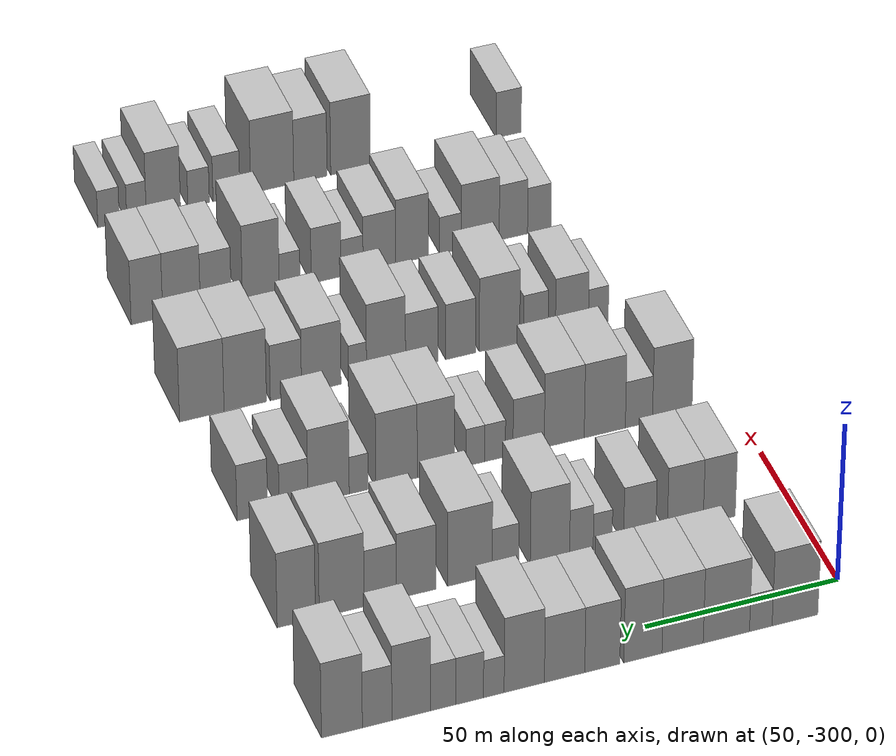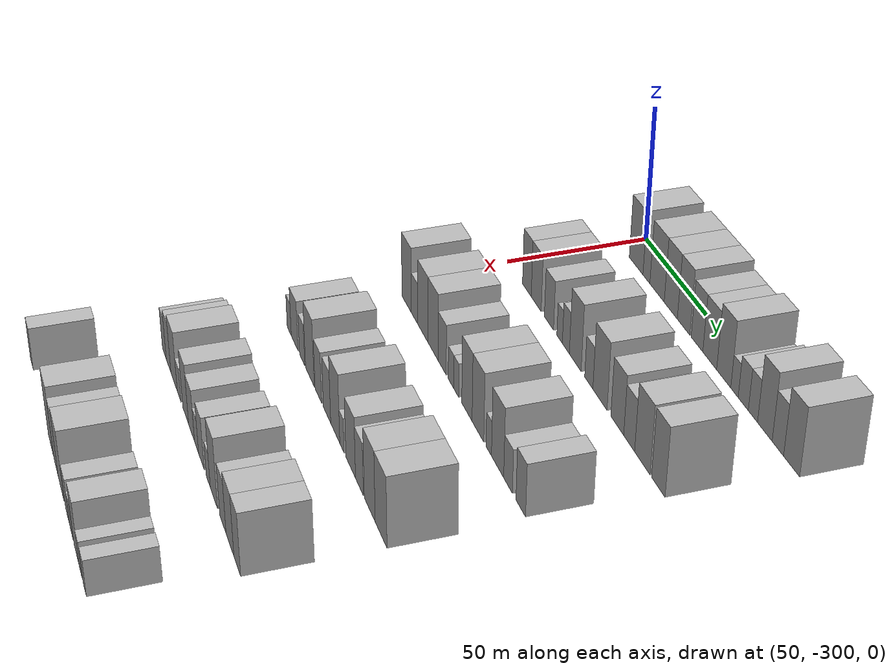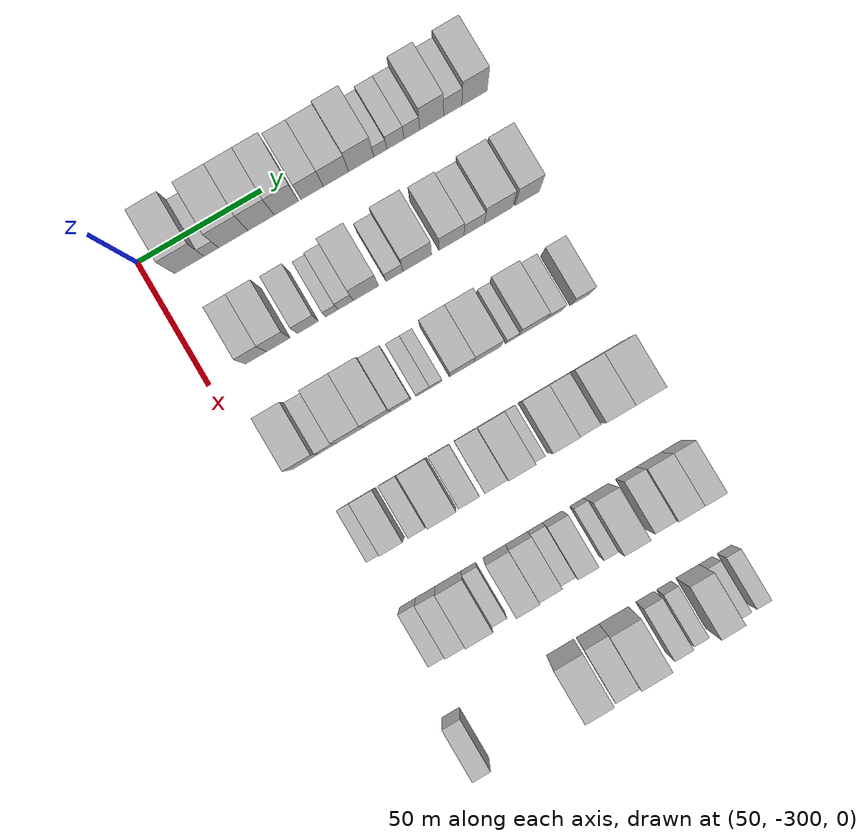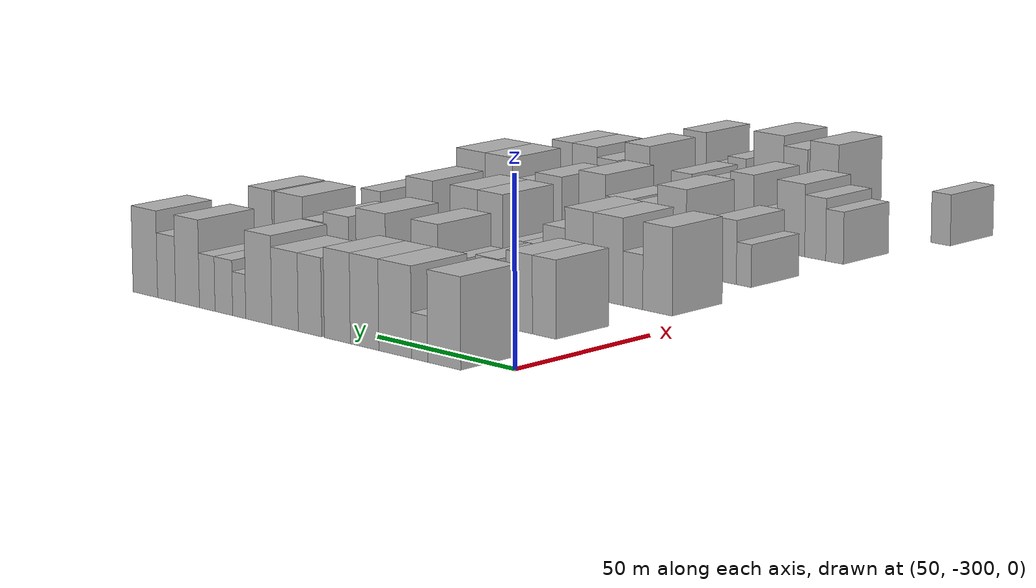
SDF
<sdf version="1.6">
 <world name="default">
  <model name="building_37">
   <static>1</static>
   <pose>50.0000 -284.7388 0 0.000000 0.000000 0.000000</pose>
   <link name="link">
    <pose>0 0 12.00 0 0 0</pose>
    <collision name="collision"><geometry><box><size>20.0000 11.8868 24.0000</size></box></geometry></collision>
    <visual name="visual">
     <cast_shadows>0</cast_shadows>
     <geometry><box><size>20.0000 11.8868 24.0000</size></box></geometry>
     <material>
      <script>
       <uri>model://HANNAS_wall/materials/scripts</uri>
       <uri>model://HANNAS_wall/materials/textures</uri>
       <name>vrc/HANNAS_wall</name>
      </script>
     </material>
    </visual>
   </link>
  </model>
  <model name="building_38">
   <static>1</static>
   <pose>50.0000 -275.8529 0 0.000000 0.000000 0.000000</pose>
   <link name="link">
    <pose>0 0 6.00 0 0 0</pose>
    <collision name="collision"><geometry><box><size>20.0000 5.8850 12.0000</size></box></geometry></collision>
    <visual name="visual">
     <cast_shadows>0</cast_shadows>
     <geometry><box><size>20.0000 5.8850 12.0000</size></box></geometry>
     <material>
      <script>
       <uri>model://HANNAS_wall/materials/scripts</uri>
       <uri>model://HANNAS_wall/materials/textures</uri>
       <name>vrc/HANNAS_wall</name>
      </script>
     </material>
    </visual>
   </link>
  </model>
  <model name="building_39">
   <static>1</static>
   <pose>50.0000 -266.9200 0 0.000000 0.000000 0.000000</pose>
   <link name="link">
    <pose>0 0 12.00 0 0 0</pose>
    <collision name="collision"><geometry><box><size>20.0000 11.9808 24.0000</size></box></geometry></collision>
    <visual name="visual">
     <cast_shadows>0</cast_shadows>
     <geometry><box><size>20.0000 11.9808 24.0000</size></box></geometry>
     <material>
      <script>
       <uri>model://HANNAS_wall/materials/scripts</uri>
       <uri>model://HANNAS_wall/materials/textures</uri>
       <name>vrc/HANNAS_wall</name>
      </script>
     </material>
    </visual>
   </link>
  </model>
  <model name="building_40">
   <static>1</static>
   <pose>50.0000 -255.6185 0 0.000000 0.000000 0.000000</pose>
   <link name="link">
    <pose>0 0 12.00 0 0 0</pose>
    <collision name="collision"><geometry><box><size>20.0000 10.6222 24.0000</size></box></geometry></collision>
    <visual name="visual">
     <cast_shadows>0</cast_shadows>
     <geometry><box><size>20.0000 10.6222 24.0000</size></box></geometry>
     <material>
      <script>
       <uri>model://HANNAS_wall/materials/scripts</uri>
       <uri>model://HANNAS_wall/materials/textures</uri>
       <name>vrc/HANNAS_wall</name>
      </script>
     </material>
    </visual>
   </link>
  </model>
  <model name="building_41">
   <static>1</static>
   <pose>50.0000 -245.3861 0 0.000000 0.000000 0.000000</pose>
   <link name="link">
    <pose>0 0 12.00 0 0 0</pose>
    <collision name="collision"><geometry><box><size>20.0000 9.8425 24.0000</size></box></geometry></collision>
    <visual name="visual">
     <cast_shadows>0</cast_shadows>
     <geometry><box><size>20.0000 9.8425 24.0000</size></box></geometry>
     <material>
      <script>
       <uri>model://HANNAS_wall/materials/scripts</uri>
       <uri>model://HANNAS_wall/materials/textures</uri>
       <name>vrc/HANNAS_wall</name>
      </script>
     </material>
    </visual>
   </link>
  </model>
  <model name="building_42">
   <static>1</static>
   <pose>50.0000 -234.9678 0 0.000000 0.000000 0.000000</pose>
   <link name="link">
    <pose>0 0 10.50 0 0 0</pose>
    <collision name="collision"><geometry><box><size>20.0000 8.9940 21.0000</size></box></geometry></collision>
    <visual name="visual">
     <cast_shadows>0</cast_shadows>
     <geometry><box><size>20.0000 8.9940 21.0000</size></box></geometry>
     <material>
      <script>
       <uri>model://HANNAS_wall/materials/scripts</uri>
       <uri>model://HANNAS_wall/materials/textures</uri>
       <name>vrc/HANNAS_wall</name>
      </script>
     </material>
    </visual>
   </link>
  </model>
  <model name="building_43">
   <static>1</static>
   <pose>50.0000 -225.3189 0 0.000000 0.000000 0.000000</pose>
   <link name="link">
    <pose>0 0 10.50 0 0 0</pose>
    <collision name="collision"><geometry><box><size>20.0000 10.3038 21.0000</size></box></geometry></collision>
    <visual name="visual">
     <cast_shadows>0</cast_shadows>
     <geometry><box><size>20.0000 10.3038 21.0000</size></box></geometry>
     <material>
      <script>
       <uri>model://HANNAS_wall/materials/scripts</uri>
       <uri>model://HANNAS_wall/materials/textures</uri>
       <name>vrc/HANNAS_wall</name>
      </script>
     </material>
    </visual>
   </link>
  </model>
  <model name="building_44">
   <static>1</static>
   <pose>50.0000 -215.0353 0 0.000000 0.000000 0.000000</pose>
   <link name="link">
    <pose>0 0 12.00 0 0 0</pose>
    <collision name="collision"><geometry><box><size>20.0000 10.2634 24.0000</size></box></geometry></collision>
    <visual name="visual">
     <cast_shadows>0</cast_shadows>
     <geometry><box><size>20.0000 10.2634 24.0000</size></box></geometry>
     <material>
      <script>
       <uri>model://HANNAS_wall/materials/scripts</uri>
       <uri>model://HANNAS_wall/materials/textures</uri>
       <name>vrc/HANNAS_wall</name>
      </script>
     </material>
    </visual>
   </link>
  </model>
  <model name="building_45">
   <static>1</static>
   <pose>50.0000 -207.2858 0 0.000000 0.000000 0.000000</pose>
   <link name="link">
    <pose>0 0 6.00 0 0 0</pose>
    <collision name="collision"><geometry><box><size>20.0000 5.2356 12.0000</size></box></geometry></collision>
    <visual name="visual">
     <cast_shadows>0</cast_shadows>
     <geometry><box><size>20.0000 5.2356 12.0000</size></box></geometry>
     <material>
      <script>
       <uri>model://HANNAS_wall/materials/scripts</uri>
       <uri>model://HANNAS_wall/materials/textures</uri>
       <name>vrc/HANNAS_wall</name>
      </script>
     </material>
    </visual>
   </link>
  </model>
  <model name="building_46">
   <static>1</static>
   <pose>50.0000 -201.1318 0 0.000000 0.000000 0.000000</pose>
   <link name="link">
    <pose>0 0 7.50 0 0 0</pose>
    <collision name="collision"><geometry><box><size>20.0000 7.0723 15.0000</size></box></geometry></collision>
    <visual name="visual">
     <cast_shadows>0</cast_shadows>
     <geometry><box><size>20.0000 7.0723 15.0000</size></box></geometry>
     <material>
      <script>
       <uri>model://HANNAS_wall/materials/scripts</uri>
       <uri>model://HANNAS_wall/materials/textures</uri>
       <name>vrc/HANNAS_wall</name>
      </script>
     </material>
    </visual>
   </link>
  </model>
  <model name="building_47">
   <static>1</static>
   <pose>50.0000 -194.4383 0 0.000000 0.000000 0.000000</pose>
   <link name="link">
    <pose>0 0 7.50 0 0 0</pose>
    <collision name="collision"><geometry><box><size>20.0000 6.3148 15.0000</size></box></geometry></collision>
    <visual name="visual">
     <cast_shadows>0</cast_shadows>
     <geometry><box><size>20.0000 6.3148 15.0000</size></box></geometry>
     <material>
      <script>
       <uri>model://HANNAS_wall/materials/scripts</uri>
       <uri>model://HANNAS_wall/materials/textures</uri>
       <name>vrc/HANNAS_wall</name>
      </script>
     </material>
    </visual>
   </link>
  </model>
  <model name="building_48">
   <static>1</static>
   <pose>50.0000 -186.3995 0 0.000000 0.000000 0.000000</pose>
   <link name="link">
    <pose>0 0 12.00 0 0 0</pose>
    <collision name="collision"><geometry><box><size>20.0000 9.7627 24.0000</size></box></geometry></collision>
    <visual name="visual">
     <cast_shadows>0</cast_shadows>
     <geometry><box><size>20.0000 9.7627 24.0000</size></box></geometry>
     <material>
      <script>
       <uri>model://HANNAS_wall/materials/scripts</uri>
       <uri>model://HANNAS_wall/materials/textures</uri>
       <name>vrc/HANNAS_wall</name>
      </script>
     </material>
    </visual>
   </link>
  </model>
  <model name="building_49">
   <static>1</static>
   <pose>50.0000 -177.7946 0 0.000000 0.000000 0.000000</pose>
   <link name="link">
    <pose>0 0 9.00 0 0 0</pose>
    <collision name="collision"><geometry><box><size>20.0000 7.4471 18.0000</size></box></geometry></collision>
    <visual name="visual">
     <cast_shadows>0</cast_shadows>
     <geometry><box><size>20.0000 7.4471 18.0000</size></box></geometry>
     <material>
      <script>
       <uri>model://HANNAS_wall/materials/scripts</uri>
       <uri>model://HANNAS_wall/materials/textures</uri>
       <name>vrc/HANNAS_wall</name>
      </script>
     </material>
    </visual>
   </link>
  </model>
  <model name="building_50">
   <static>1</static>
   <pose>50.0000 -168.9355 0 0.000000 0.000000 0.000000</pose>
   <link name="link">
    <pose>0 0 12.00 0 0 0</pose>
    <collision name="collision"><geometry><box><size>20.0000 10.2711 24.0000</size></box></geometry></collision>
    <visual name="visual">
     <cast_shadows>0</cast_shadows>
     <geometry><box><size>20.0000 10.2711 24.0000</size></box></geometry>
     <material>
      <script>
       <uri>model://HANNAS_wall/materials/scripts</uri>
       <uri>model://HANNAS_wall/materials/textures</uri>
       <name>vrc/HANNAS_wall</name>
      </script>
     </material>
    </visual>
   </link>
  </model>
  <model name="building_175">
   <static>1</static>
   <pose>90.0000 -280.9578 0 0.000000 0.000000 0.000000</pose>
   <link name="link">
    <pose>0 0 10.50 0 0 0</pose>
    <collision name="collision"><geometry><box><size>20.0000 8.4705 21.0000</size></box></geometry></collision>
    <visual name="visual">
     <cast_shadows>0</cast_shadows>
     <geometry><box><size>20.0000 8.4705 21.0000</size></box></geometry>
     <material>
      <script>
       <uri>model://HANNAS_wall/materials/scripts</uri>
       <uri>model://HANNAS_wall/materials/textures</uri>
       <name>vrc/HANNAS_wall</name>
      </script>
     </material>
    </visual>
   </link>
  </model>
  <model name="building_176">
   <static>1</static>
   <pose>90.0000 -271.9927 0 0.000000 0.000000 0.000000</pose>
   <link name="link">
    <pose>0 0 10.50 0 0 0</pose>
    <collision name="collision"><geometry><box><size>20.0000 9.4598 21.0000</size></box></geometry></collision>
    <visual name="visual">
     <cast_shadows>0</cast_shadows>
     <geometry><box><size>20.0000 9.4598 21.0000</size></box></geometry>
     <material>
      <script>
       <uri>model://HANNAS_wall/materials/scripts</uri>
       <uri>model://HANNAS_wall/materials/textures</uri>
       <name>vrc/HANNAS_wall</name>
      </script>
     </material>
    </visual>
   </link>
  </model>
  <model name="building_177">
   <static>1</static>
   <pose>90.0000 -260.0282 0 0.000000 0.000000 0.000000</pose>
   <link name="link">
    <pose>0 0 9.00 0 0 0</pose>
    <collision name="collision"><geometry><box><size>20.0000 8.4692 18.0000</size></box></geometry></collision>
    <visual name="visual">
     <cast_shadows>0</cast_shadows>
     <geometry><box><size>20.0000 8.4692 18.0000</size></box></geometry>
     <material>
      <script>
       <uri>model://HANNAS_wall/materials/scripts</uri>
       <uri>model://HANNAS_wall/materials/textures</uri>
       <name>vrc/HANNAS_wall</name>
      </script>
     </material>
    </visual>
   </link>
  </model>
  <model name="building_178">
   <static>1</static>
   <pose>90.0000 -250.3321 0 0.000000 0.000000 0.000000</pose>
   <link name="link">
    <pose>0 0 6.00 0 0 0</pose>
    <collision name="collision"><geometry><box><size>20.0000 4.9231 12.0000</size></box></geometry></collision>
    <visual name="visual">
     <cast_shadows>0</cast_shadows>
     <geometry><box><size>20.0000 4.9231 12.0000</size></box></geometry>
     <material>
      <script>
       <uri>model://HANNAS_wall/materials/scripts</uri>
       <uri>model://HANNAS_wall/materials/textures</uri>
       <name>vrc/HANNAS_wall</name>
      </script>
     </material>
    </visual>
   </link>
  </model>
  <model name="building_179">
   <static>1</static>
   <pose>90.0000 -244.7832 0 0.000000 0.000000 0.000000</pose>
   <link name="link">
    <pose>0 0 7.50 0 0 0</pose>
    <collision name="collision"><geometry><box><size>20.0000 6.1745 15.0000</size></box></geometry></collision>
    <visual name="visual">
     <cast_shadows>0</cast_shadows>
     <geometry><box><size>20.0000 6.1745 15.0000</size></box></geometry>
     <material>
      <script>
       <uri>model://HANNAS_wall/materials/scripts</uri>
       <uri>model://HANNAS_wall/materials/textures</uri>
       <name>vrc/HANNAS_wall</name>
      </script>
     </material>
    </visual>
   </link>
  </model>
  <model name="building_180">
   <static>1</static>
   <pose>90.0000 -236.5815 0 0.000000 0.000000 0.000000</pose>
   <link name="link">
    <pose>0 0 12.00 0 0 0</pose>
    <collision name="collision"><geometry><box><size>20.0000 10.2289 24.0000</size></box></geometry></collision>
    <visual name="visual">
     <cast_shadows>0</cast_shadows>
     <geometry><box><size>20.0000 10.2289 24.0000</size></box></geometry>
     <material>
      <script>
       <uri>model://HANNAS_wall/materials/scripts</uri>
       <uri>model://HANNAS_wall/materials/textures</uri>
       <name>vrc/HANNAS_wall</name>
      </script>
     </material>
    </visual>
   </link>
  </model>
  <model name="building_181">
   <static>1</static>
   <pose>90.0000 -225.0311 0 0.000000 0.000000 0.000000</pose>
   <link name="link">
    <pose>0 0 7.50 0 0 0</pose>
    <collision name="collision"><geometry><box><size>20.0000 6.8720 15.0000</size></box></geometry></collision>
    <visual name="visual">
     <cast_shadows>0</cast_shadows>
     <geometry><box><size>20.0000 6.8720 15.0000</size></box></geometry>
     <material>
      <script>
       <uri>model://HANNAS_wall/materials/scripts</uri>
       <uri>model://HANNAS_wall/materials/textures</uri>
       <name>vrc/HANNAS_wall</name>
      </script>
     </material>
    </visual>
   </link>
  </model>
  <model name="building_182">
   <static>1</static>
   <pose>90.0000 -215.8116 0 0.000000 0.000000 0.000000</pose>
   <link name="link">
    <pose>0 0 12.00 0 0 0</pose>
    <collision name="collision"><geometry><box><size>20.0000 11.5669 24.0000</size></box></geometry></collision>
    <visual name="visual">
     <cast_shadows>0</cast_shadows>
     <geometry><box><size>20.0000 11.5669 24.0000</size></box></geometry>
     <material>
      <script>
       <uri>model://HANNAS_wall/materials/scripts</uri>
       <uri>model://HANNAS_wall/materials/textures</uri>
       <name>vrc/HANNAS_wall</name>
      </script>
     </material>
    </visual>
   </link>
  </model>
  <model name="building_183">
   <static>1</static>
   <pose>90.0000 -201.9720 0 0.000000 0.000000 0.000000</pose>
   <link name="link">
    <pose>0 0 10.50 0 0 0</pose>
    <collision name="collision"><geometry><box><size>20.0000 10.1124 21.0000</size></box></geometry></collision>
    <visual name="visual">
     <cast_shadows>0</cast_shadows>
     <geometry><box><size>20.0000 10.1124 21.0000</size></box></geometry>
     <material>
      <script>
       <uri>model://HANNAS_wall/materials/scripts</uri>
       <uri>model://HANNAS_wall/materials/textures</uri>
       <name>vrc/HANNAS_wall</name>
      </script>
     </material>
    </visual>
   </link>
  </model>
  <model name="building_184">
   <static>1</static>
   <pose>90.0000 -192.7552 0 0.000000 0.000000 0.000000</pose>
   <link name="link">
    <pose>0 0 9.00 0 0 0</pose>
    <collision name="collision"><geometry><box><size>20.0000 8.3213 18.0000</size></box></geometry></collision>
    <visual name="visual">
     <cast_shadows>0</cast_shadows>
     <geometry><box><size>20.0000 8.3213 18.0000</size></box></geometry>
     <material>
      <script>
       <uri>model://HANNAS_wall/materials/scripts</uri>
       <uri>model://HANNAS_wall/materials/textures</uri>
       <name>vrc/HANNAS_wall</name>
      </script>
     </material>
    </visual>
   </link>
  </model>
  <model name="building_185">
   <static>1</static>
   <pose>90.0000 -182.8525 0 0.000000 0.000000 0.000000</pose>
   <link name="link">
    <pose>0 0 12.00 0 0 0</pose>
    <collision name="collision"><geometry><box><size>20.0000 11.4841 24.0000</size></box></geometry></collision>
    <visual name="visual">
     <cast_shadows>0</cast_shadows>
     <geometry><box><size>20.0000 11.4841 24.0000</size></box></geometry>
     <material>
      <script>
       <uri>model://HANNAS_wall/materials/scripts</uri>
       <uri>model://HANNAS_wall/materials/textures</uri>
       <name>vrc/HANNAS_wall</name>
      </script>
     </material>
    </visual>
   </link>
  </model>
  <model name="building_186">
   <static>1</static>
   <pose>90.0000 -171.2404 0 0.000000 0.000000 0.000000</pose>
   <link name="link">
    <pose>0 0 12.00 0 0 0</pose>
    <collision name="collision"><geometry><box><size>20.0000 9.7399 24.0000</size></box></geometry></collision>
    <visual name="visual">
     <cast_shadows>0</cast_shadows>
     <geometry><box><size>20.0000 9.7399 24.0000</size></box></geometry>
     <material>
      <script>
       <uri>model://HANNAS_wall/materials/scripts</uri>
       <uri>model://HANNAS_wall/materials/textures</uri>
       <name>vrc/HANNAS_wall</name>
      </script>
     </material>
    </visual>
   </link>
  </model>
  <model name="building_313">
   <static>1</static>
   <pose>130.0000 -284.2137 0 0.000000 0.000000 0.000000</pose>
   <link name="link">
    <pose>0 0 12.00 0 0 0</pose>
    <collision name="collision"><geometry><box><size>20.0000 10.6207 24.0000</size></box></geometry></collision>
    <visual name="visual">
     <cast_shadows>0</cast_shadows>
     <geometry><box><size>20.0000 10.6207 24.0000</size></box></geometry>
     <material>
      <script>
       <uri>model://HANNAS_wall/materials/scripts</uri>
       <uri>model://HANNAS_wall/materials/textures</uri>
       <name>vrc/HANNAS_wall</name>
      </script>
     </material>
    </visual>
   </link>
  </model>
  <model name="building_314">
   <static>1</static>
   <pose>130.0000 -275.2916 0 0.000000 0.000000 0.000000</pose>
   <link name="link">
    <pose>0 0 7.50 0 0 0</pose>
    <collision name="collision"><geometry><box><size>20.0000 7.2234 15.0000</size></box></geometry></collision>
    <visual name="visual">
     <cast_shadows>0</cast_shadows>
     <geometry><box><size>20.0000 7.2234 15.0000</size></box></geometry>
     <material>
      <script>
       <uri>model://HANNAS_wall/materials/scripts</uri>
       <uri>model://HANNAS_wall/materials/textures</uri>
       <name>vrc/HANNAS_wall</name>
      </script>
     </material>
    </visual>
   </link>
  </model>
  <model name="building_315">
   <static>1</static>
   <pose>130.0000 -266.1962 0 0.000000 0.000000 0.000000</pose>
   <link name="link">
    <pose>0 0 12.00 0 0 0</pose>
    <collision name="collision"><geometry><box><size>20.0000 10.9675 24.0000</size></box></geometry></collision>
    <visual name="visual">
     <cast_shadows>0</cast_shadows>
     <geometry><box><size>20.0000 10.9675 24.0000</size></box></geometry>
     <material>
      <script>
       <uri>model://HANNAS_wall/materials/scripts</uri>
       <uri>model://HANNAS_wall/materials/textures</uri>
       <name>vrc/HANNAS_wall</name>
      </script>
     </material>
    </visual>
   </link>
  </model>
  <model name="building_316">
   <static>1</static>
   <pose>130.0000 -255.4026 0 0.000000 0.000000 0.000000</pose>
   <link name="link">
    <pose>0 0 12.00 0 0 0</pose>
    <collision name="collision"><geometry><box><size>20.0000 10.6198 24.0000</size></box></geometry></collision>
    <visual name="visual">
     <cast_shadows>0</cast_shadows>
     <geometry><box><size>20.0000 10.6198 24.0000</size></box></geometry>
     <material>
      <script>
       <uri>model://HANNAS_wall/materials/scripts</uri>
       <uri>model://HANNAS_wall/materials/textures</uri>
       <name>vrc/HANNAS_wall</name>
      </script>
     </material>
    </visual>
   </link>
  </model>
  <model name="building_317">
   <static>1</static>
   <pose>130.0000 -245.9432 0 0.000000 0.000000 0.000000</pose>
   <link name="link">
    <pose>0 0 9.00 0 0 0</pose>
    <collision name="collision"><geometry><box><size>20.0000 8.2990 18.0000</size></box></geometry></collision>
    <visual name="visual">
     <cast_shadows>0</cast_shadows>
     <geometry><box><size>20.0000 8.2990 18.0000</size></box></geometry>
     <material>
      <script>
       <uri>model://HANNAS_wall/materials/scripts</uri>
       <uri>model://HANNAS_wall/materials/textures</uri>
       <name>vrc/HANNAS_wall</name>
      </script>
     </material>
    </visual>
   </link>
  </model>
  <model name="building_318">
   <static>1</static>
   <pose>130.0000 -237.0537 0 0.000000 0.000000 0.000000</pose>
   <link name="link">
    <pose>0 0 6.00 0 0 0</pose>
    <collision name="collision"><geometry><box><size>20.0000 5.4799 12.0000</size></box></geometry></collision>
    <visual name="visual">
     <cast_shadows>0</cast_shadows>
     <geometry><box><size>20.0000 5.4799 12.0000</size></box></geometry>
     <material>
      <script>
       <uri>model://HANNAS_wall/materials/scripts</uri>
       <uri>model://HANNAS_wall/materials/textures</uri>
       <name>vrc/HANNAS_wall</name>
      </script>
     </material>
    </visual>
   </link>
  </model>
  <model name="building_319">
   <static>1</static>
   <pose>130.0000 -231.8690 0 0.000000 0.000000 0.000000</pose>
   <link name="link">
    <pose>0 0 6.00 0 0 0</pose>
    <collision name="collision"><geometry><box><size>20.0000 4.8894 12.0000</size></box></geometry></collision>
    <visual name="visual">
     <cast_shadows>0</cast_shadows>
     <geometry><box><size>20.0000 4.8894 12.0000</size></box></geometry>
     <material>
      <script>
       <uri>model://HANNAS_wall/materials/scripts</uri>
       <uri>model://HANNAS_wall/materials/textures</uri>
       <name>vrc/HANNAS_wall</name>
      </script>
     </material>
    </visual>
   </link>
  </model>
  <model name="building_320">
   <static>1</static>
   <pose>130.0000 -221.4959 0 0.000000 0.000000 0.000000</pose>
   <link name="link">
    <pose>0 0 12.00 0 0 0</pose>
    <collision name="collision"><geometry><box><size>20.0000 9.8567 24.0000</size></box></geometry></collision>
    <visual name="visual">
     <cast_shadows>0</cast_shadows>
     <geometry><box><size>20.0000 9.8567 24.0000</size></box></geometry>
     <material>
      <script>
       <uri>model://HANNAS_wall/materials/scripts</uri>
       <uri>model://HANNAS_wall/materials/textures</uri>
       <name>vrc/HANNAS_wall</name>
      </script>
     </material>
    </visual>
   </link>
  </model>
  <model name="building_321">
   <static>1</static>
   <pose>130.0000 -211.1386 0 0.000000 0.000000 0.000000</pose>
   <link name="link">
    <pose>0 0 12.00 0 0 0</pose>
    <collision name="collision"><geometry><box><size>20.0000 10.8580 24.0000</size></box></geometry></collision>
    <visual name="visual">
     <cast_shadows>0</cast_shadows>
     <geometry><box><size>20.0000 10.8580 24.0000</size></box></geometry>
     <material>
      <script>
       <uri>model://HANNAS_wall/materials/scripts</uri>
       <uri>model://HANNAS_wall/materials/textures</uri>
       <name>vrc/HANNAS_wall</name>
      </script>
     </material>
    </visual>
   </link>
  </model>
  <model name="building_322">
   <static>1</static>
   <pose>130.0000 -201.2331 0 0.000000 0.000000 0.000000</pose>
   <link name="link">
    <pose>0 0 6.00 0 0 0</pose>
    <collision name="collision"><geometry><box><size>20.0000 4.9531 12.0000</size></box></geometry></collision>
    <visual name="visual">
     <cast_shadows>0</cast_shadows>
     <geometry><box><size>20.0000 4.9531 12.0000</size></box></geometry>
     <material>
      <script>
       <uri>model://HANNAS_wall/materials/scripts</uri>
       <uri>model://HANNAS_wall/materials/textures</uri>
       <name>vrc/HANNAS_wall</name>
      </script>
     </material>
    </visual>
   </link>
  </model>
  <model name="building_323">
   <static>1</static>
   <pose>130.0000 -193.3806 0 0.000000 0.000000 0.000000</pose>
   <link name="link">
    <pose>0 0 12.00 0 0 0</pose>
    <collision name="collision"><geometry><box><size>20.0000 10.7519 24.0000</size></box></geometry></collision>
    <visual name="visual">
     <cast_shadows>0</cast_shadows>
     <geometry><box><size>20.0000 10.7519 24.0000</size></box></geometry>
     <material>
      <script>
       <uri>model://HANNAS_wall/materials/scripts</uri>
       <uri>model://HANNAS_wall/materials/textures</uri>
       <name>vrc/HANNAS_wall</name>
      </script>
     </material>
    </visual>
   </link>
  </model>
  <model name="building_324">
   <static>1</static>
   <pose>130.0000 -184.2711 0 0.000000 0.000000 0.000000</pose>
   <link name="link">
    <pose>0 0 7.50 0 0 0</pose>
    <collision name="collision"><geometry><box><size>20.0000 7.4671 15.0000</size></box></geometry></collision>
    <visual name="visual">
     <cast_shadows>0</cast_shadows>
     <geometry><box><size>20.0000 7.4671 15.0000</size></box></geometry>
     <material>
      <script>
       <uri>model://HANNAS_wall/materials/scripts</uri>
       <uri>model://HANNAS_wall/materials/textures</uri>
       <name>vrc/HANNAS_wall</name>
      </script>
     </material>
    </visual>
   </link>
  </model>
  <model name="building_325">
   <static>1</static>
   <pose>130.0000 -173.5588 0 0.000000 0.000000 0.000000</pose>
   <link name="link">
    <pose>0 0 9.00 0 0 0</pose>
    <collision name="collision"><geometry><box><size>20.0000 7.9576 18.0000</size></box></geometry></collision>
    <visual name="visual">
     <cast_shadows>0</cast_shadows>
     <geometry><box><size>20.0000 7.9576 18.0000</size></box></geometry>
     <material>
      <script>
       <uri>model://HANNAS_wall/materials/scripts</uri>
       <uri>model://HANNAS_wall/materials/textures</uri>
       <name>vrc/HANNAS_wall</name>
      </script>
     </material>
    </visual>
   </link>
  </model>
  <model name="building_450">
   <static>1</static>
   <pose>170.0000 -279.7209 0 0.000000 0.000000 0.000000</pose>
   <link name="link">
    <pose>0 0 6.00 0 0 0</pose>
    <collision name="collision"><geometry><box><size>20.0000 5.4074 12.0000</size></box></geometry></collision>
    <visual name="visual">
     <cast_shadows>0</cast_shadows>
     <geometry><box><size>20.0000 5.4074 12.0000</size></box></geometry>
     <material>
      <script>
       <uri>model://HANNAS_wall/materials/scripts</uri>
       <uri>model://HANNAS_wall/materials/textures</uri>
       <name>vrc/HANNAS_wall</name>
      </script>
     </material>
    </visual>
   </link>
  </model>
  <model name="building_451">
   <static>1</static>
   <pose>170.0000 -272.5536 0 0.000000 0.000000 0.000000</pose>
   <link name="link">
    <pose>0 0 9.00 0 0 0</pose>
    <collision name="collision"><geometry><box><size>20.0000 8.9273 18.0000</size></box></geometry></collision>
    <visual name="visual">
     <cast_shadows>0</cast_shadows>
     <geometry><box><size>20.0000 8.9273 18.0000</size></box></geometry>
     <material>
      <script>
       <uri>model://HANNAS_wall/materials/scripts</uri>
       <uri>model://HANNAS_wall/materials/textures</uri>
       <name>vrc/HANNAS_wall</name>
      </script>
     </material>
    </visual>
   </link>
  </model>
  <model name="building_452">
   <static>1</static>
   <pose>170.0000 -262.7627 0 0.000000 0.000000 0.000000</pose>
   <link name="link">
    <pose>0 0 7.50 0 0 0</pose>
    <collision name="collision"><geometry><box><size>20.0000 6.6545 15.0000</size></box></geometry></collision>
    <visual name="visual">
     <cast_shadows>0</cast_shadows>
     <geometry><box><size>20.0000 6.6545 15.0000</size></box></geometry>
     <material>
      <script>
       <uri>model://HANNAS_wall/materials/scripts</uri>
       <uri>model://HANNAS_wall/materials/textures</uri>
       <name>vrc/HANNAS_wall</name>
      </script>
     </material>
    </visual>
   </link>
  </model>
  <model name="building_453">
   <static>1</static>
   <pose>170.0000 -252.9915 0 0.000000 0.000000 0.000000</pose>
   <link name="link">
    <pose>0 0 12.00 0 0 0</pose>
    <collision name="collision"><geometry><box><size>20.0000 10.8878 24.0000</size></box></geometry></collision>
    <visual name="visual">
     <cast_shadows>0</cast_shadows>
     <geometry><box><size>20.0000 10.8878 24.0000</size></box></geometry>
     <material>
      <script>
       <uri>model://HANNAS_wall/materials/scripts</uri>
       <uri>model://HANNAS_wall/materials/textures</uri>
       <name>vrc/HANNAS_wall</name>
      </script>
     </material>
    </visual>
   </link>
  </model>
  <model name="building_454">
   <static>1</static>
   <pose>170.0000 -242.5281 0 0.000000 0.000000 0.000000</pose>
   <link name="link">
    <pose>0 0 9.00 0 0 0</pose>
    <collision name="collision"><geometry><box><size>20.0000 8.0390 18.0000</size></box></geometry></collision>
    <visual name="visual">
     <cast_shadows>0</cast_shadows>
     <geometry><box><size>20.0000 8.0390 18.0000</size></box></geometry>
     <material>
      <script>
       <uri>model://HANNAS_wall/materials/scripts</uri>
       <uri>model://HANNAS_wall/materials/textures</uri>
       <name>vrc/HANNAS_wall</name>
      </script>
     </material>
    </visual>
   </link>
  </model>
  <model name="building_455">
   <static>1</static>
   <pose>170.0000 -232.1418 0 0.000000 0.000000 0.000000</pose>
   <link name="link">
    <pose>0 0 9.00 0 0 0</pose>
    <collision name="collision"><geometry><box><size>20.0000 8.7337 18.0000</size></box></geometry></collision>
    <visual name="visual">
     <cast_shadows>0</cast_shadows>
     <geometry><box><size>20.0000 8.7337 18.0000</size></box></geometry>
     <material>
      <script>
       <uri>model://HANNAS_wall/materials/scripts</uri>
       <uri>model://HANNAS_wall/materials/textures</uri>
       <name>vrc/HANNAS_wall</name>
      </script>
     </material>
    </visual>
   </link>
  </model>
  <model name="building_456">
   <static>1</static>
   <pose>170.0000 -222.5705 0 0.000000 0.000000 0.000000</pose>
   <link name="link">
    <pose>0 0 12.00 0 0 0</pose>
    <collision name="collision"><geometry><box><size>20.0000 10.4088 24.0000</size></box></geometry></collision>
    <visual name="visual">
     <cast_shadows>0</cast_shadows>
     <geometry><box><size>20.0000 10.4088 24.0000</size></box></geometry>
     <material>
      <script>
       <uri>model://HANNAS_wall/materials/scripts</uri>
       <uri>model://HANNAS_wall/materials/textures</uri>
       <name>vrc/HANNAS_wall</name>
      </script>
     </material>
    </visual>
   </link>
  </model>
  <model name="building_457">
   <static>1</static>
   <pose>170.0000 -214.9620 0 0.000000 0.000000 0.000000</pose>
   <link name="link">
    <pose>0 0 6.00 0 0 0</pose>
    <collision name="collision"><geometry><box><size>20.0000 4.8082 12.0000</size></box></geometry></collision>
    <visual name="visual">
     <cast_shadows>0</cast_shadows>
     <geometry><box><size>20.0000 4.8082 12.0000</size></box></geometry>
     <material>
      <script>
       <uri>model://HANNAS_wall/materials/scripts</uri>
       <uri>model://HANNAS_wall/materials/textures</uri>
       <name>vrc/HANNAS_wall</name>
      </script>
     </material>
    </visual>
   </link>
  </model>
  <model name="building_458">
   <static>1</static>
   <pose>170.0000 -205.3204 0 0.000000 0.000000 0.000000</pose>
   <link name="link">
    <pose>0 0 10.50 0 0 0</pose>
    <collision name="collision"><geometry><box><size>20.0000 10.4750 21.0000</size></box></geometry></collision>
    <visual name="visual">
     <cast_shadows>0</cast_shadows>
     <geometry><box><size>20.0000 10.4750 21.0000</size></box></geometry>
     <material>
      <script>
       <uri>model://HANNAS_wall/materials/scripts</uri>
       <uri>model://HANNAS_wall/materials/textures</uri>
       <name>vrc/HANNAS_wall</name>
      </script>
     </material>
    </visual>
   </link>
  </model>
  <model name="building_459">
   <static>1</static>
   <pose>170.0000 -195.9424 0 0.000000 0.000000 0.000000</pose>
   <link name="link">
    <pose>0 0 9.00 0 0 0</pose>
    <collision name="collision"><geometry><box><size>20.0000 8.2811 18.0000</size></box></geometry></collision>
    <visual name="visual">
     <cast_shadows>0</cast_shadows>
     <geometry><box><size>20.0000 8.2811 18.0000</size></box></geometry>
     <material>
      <script>
       <uri>model://HANNAS_wall/materials/scripts</uri>
       <uri>model://HANNAS_wall/materials/textures</uri>
       <name>vrc/HANNAS_wall</name>
      </script>
     </material>
    </visual>
   </link>
  </model>
  <model name="building_460">
   <static>1</static>
   <pose>170.0000 -185.2020 0 0.000000 0.000000 0.000000</pose>
   <link name="link">
    <pose>0 0 12.00 0 0 0</pose>
    <collision name="collision"><geometry><box><size>20.0000 11.1996 24.0000</size></box></geometry></collision>
    <visual name="visual">
     <cast_shadows>0</cast_shadows>
     <geometry><box><size>20.0000 11.1996 24.0000</size></box></geometry>
     <material>
      <script>
       <uri>model://HANNAS_wall/materials/scripts</uri>
       <uri>model://HANNAS_wall/materials/textures</uri>
       <name>vrc/HANNAS_wall</name>
      </script>
     </material>
    </visual>
   </link>
  </model>
  <model name="building_461">
   <static>1</static>
   <pose>170.0000 -173.7382 0 0.000000 0.000000 0.000000</pose>
   <link name="link">
    <pose>0 0 12.00 0 0 0</pose>
    <collision name="collision"><geometry><box><size>20.0000 11.7281 24.0000</size></box></geometry></collision>
    <visual name="visual">
     <cast_shadows>0</cast_shadows>
     <geometry><box><size>20.0000 11.7281 24.0000</size></box></geometry>
     <material>
      <script>
       <uri>model://HANNAS_wall/materials/scripts</uri>
       <uri>model://HANNAS_wall/materials/textures</uri>
       <name>vrc/HANNAS_wall</name>
      </script>
     </material>
    </visual>
   </link>
  </model>
  <model name="building_581">
   <static>1</static>
   <pose>210.0000 -278.6786 0 0.000000 0.000000 0.000000</pose>
   <link name="link">
    <pose>0 0 7.50 0 0 0</pose>
    <collision name="collision"><geometry><box><size>20.0000 6.4524 15.0000</size></box></geometry></collision>
    <visual name="visual">
     <cast_shadows>0</cast_shadows>
     <geometry><box><size>20.0000 6.4524 15.0000</size></box></geometry>
     <material>
      <script>
       <uri>model://HANNAS_wall/materials/scripts</uri>
       <uri>model://HANNAS_wall/materials/textures</uri>
       <name>vrc/HANNAS_wall</name>
      </script>
     </material>
    </visual>
   </link>
  </model>
  <model name="building_582">
   <static>1</static>
   <pose>210.0000 -271.5633 0 0.000000 0.000000 0.000000</pose>
   <link name="link">
    <pose>0 0 9.00 0 0 0</pose>
    <collision name="collision"><geometry><box><size>20.0000 7.7782 18.0000</size></box></geometry></collision>
    <visual name="visual">
     <cast_shadows>0</cast_shadows>
     <geometry><box><size>20.0000 7.7782 18.0000</size></box></geometry>
     <material>
      <script>
       <uri>model://HANNAS_wall/materials/scripts</uri>
       <uri>model://HANNAS_wall/materials/textures</uri>
       <name>vrc/HANNAS_wall</name>
      </script>
     </material>
    </visual>
   </link>
  </model>
  <model name="building_583">
   <static>1</static>
   <pose>210.0000 -262.4626 0 0.000000 0.000000 0.000000</pose>
   <link name="link">
    <pose>0 0 10.50 0 0 0</pose>
    <collision name="collision"><geometry><box><size>20.0000 10.4232 21.0000</size></box></geometry></collision>
    <visual name="visual">
     <cast_shadows>0</cast_shadows>
     <geometry><box><size>20.0000 10.4232 21.0000</size></box></geometry>
     <material>
      <script>
       <uri>model://HANNAS_wall/materials/scripts</uri>
       <uri>model://HANNAS_wall/materials/textures</uri>
       <name>vrc/HANNAS_wall</name>
      </script>
     </material>
    </visual>
   </link>
  </model>
  <model name="building_584">
   <static>1</static>
   <pose>210.0000 -254.3051 0 0.000000 0.000000 0.000000</pose>
   <link name="link">
    <pose>0 0 6.00 0 0 0</pose>
    <collision name="collision"><geometry><box><size>20.0000 5.8917 12.0000</size></box></geometry></collision>
    <visual name="visual">
     <cast_shadows>0</cast_shadows>
     <geometry><box><size>20.0000 5.8917 12.0000</size></box></geometry>
     <material>
      <script>
       <uri>model://HANNAS_wall/materials/scripts</uri>
       <uri>model://HANNAS_wall/materials/textures</uri>
       <name>vrc/HANNAS_wall</name>
      </script>
     </material>
    </visual>
   </link>
  </model>
  <model name="building_585">
   <static>1</static>
   <pose>210.0000 -243.8715 0 0.000000 0.000000 0.000000</pose>
   <link name="link">
    <pose>0 0 10.50 0 0 0</pose>
    <collision name="collision"><geometry><box><size>20.0000 8.9755 21.0000</size></box></geometry></collision>
    <visual name="visual">
     <cast_shadows>0</cast_shadows>
     <geometry><box><size>20.0000 8.9755 21.0000</size></box></geometry>
     <material>
      <script>
       <uri>model://HANNAS_wall/materials/scripts</uri>
       <uri>model://HANNAS_wall/materials/textures</uri>
       <name>vrc/HANNAS_wall</name>
      </script>
     </material>
    </visual>
   </link>
  </model>
  <model name="building_586">
   <static>1</static>
   <pose>210.0000 -234.9448 0 0.000000 0.000000 0.000000</pose>
   <link name="link">
    <pose>0 0 9.00 0 0 0</pose>
    <collision name="collision"><geometry><box><size>20.0000 8.8780 18.0000</size></box></geometry></collision>
    <visual name="visual">
     <cast_shadows>0</cast_shadows>
     <geometry><box><size>20.0000 8.8780 18.0000</size></box></geometry>
     <material>
      <script>
       <uri>model://HANNAS_wall/materials/scripts</uri>
       <uri>model://HANNAS_wall/materials/textures</uri>
       <name>vrc/HANNAS_wall</name>
      </script>
     </material>
    </visual>
   </link>
  </model>
  <model name="building_587">
   <static>1</static>
   <pose>210.0000 -227.5093 0 0.000000 0.000000 0.000000</pose>
   <link name="link">
    <pose>0 0 6.00 0 0 0</pose>
    <collision name="collision"><geometry><box><size>20.0000 5.9931 12.0000</size></box></geometry></collision>
    <visual name="visual">
     <cast_shadows>0</cast_shadows>
     <geometry><box><size>20.0000 5.9931 12.0000</size></box></geometry>
     <material>
      <script>
       <uri>model://HANNAS_wall/materials/scripts</uri>
       <uri>model://HANNAS_wall/materials/textures</uri>
       <name>vrc/HANNAS_wall</name>
      </script>
     </material>
    </visual>
   </link>
  </model>
  <model name="building_588">
   <static>1</static>
   <pose>210.0000 -220.4834 0 0.000000 0.000000 0.000000</pose>
   <link name="link">
    <pose>0 0 9.00 0 0 0</pose>
    <collision name="collision"><geometry><box><size>20.0000 8.0586 18.0000</size></box></geometry></collision>
    <visual name="visual">
     <cast_shadows>0</cast_shadows>
     <geometry><box><size>20.0000 8.0586 18.0000</size></box></geometry>
     <material>
      <script>
       <uri>model://HANNAS_wall/materials/scripts</uri>
       <uri>model://HANNAS_wall/materials/textures</uri>
       <name>vrc/HANNAS_wall</name>
      </script>
     </material>
    </visual>
   </link>
  </model>
  <model name="building_589">
   <static>1</static>
   <pose>210.0000 -210.6395 0 0.000000 0.000000 0.000000</pose>
   <link name="link">
    <pose>0 0 6.00 0 0 0</pose>
    <collision name="collision"><geometry><box><size>20.0000 5.6292 12.0000</size></box></geometry></collision>
    <visual name="visual">
     <cast_shadows>0</cast_shadows>
     <geometry><box><size>20.0000 5.6292 12.0000</size></box></geometry>
     <material>
      <script>
       <uri>model://HANNAS_wall/materials/scripts</uri>
       <uri>model://HANNAS_wall/materials/textures</uri>
       <name>vrc/HANNAS_wall</name>
      </script>
     </material>
    </visual>
   </link>
  </model>
  <model name="building_590">
   <static>1</static>
   <pose>210.0000 -202.8587 0 0.000000 0.000000 0.000000</pose>
   <link name="link">
    <pose>0 0 12.00 0 0 0</pose>
    <collision name="collision"><geometry><box><size>20.0000 9.9324 24.0000</size></box></geometry></collision>
    <visual name="visual">
     <cast_shadows>0</cast_shadows>
     <geometry><box><size>20.0000 9.9324 24.0000</size></box></geometry>
     <material>
      <script>
       <uri>model://HANNAS_wall/materials/scripts</uri>
       <uri>model://HANNAS_wall/materials/textures</uri>
       <name>vrc/HANNAS_wall</name>
      </script>
     </material>
    </visual>
   </link>
  </model>
  <model name="building_591">
   <static>1</static>
   <pose>210.0000 -190.7463 0 0.000000 0.000000 0.000000</pose>
   <link name="link">
    <pose>0 0 9.00 0 0 0</pose>
    <collision name="collision"><geometry><box><size>20.0000 8.2924 18.0000</size></box></geometry></collision>
    <visual name="visual">
     <cast_shadows>0</cast_shadows>
     <geometry><box><size>20.0000 8.2924 18.0000</size></box></geometry>
     <material>
      <script>
       <uri>model://HANNAS_wall/materials/scripts</uri>
       <uri>model://HANNAS_wall/materials/textures</uri>
       <name>vrc/HANNAS_wall</name>
      </script>
     </material>
    </visual>
   </link>
  </model>
  <model name="building_592">
   <static>1</static>
   <pose>210.0000 -181.5634 0 0.000000 0.000000 0.000000</pose>
   <link name="link">
    <pose>0 0 10.50 0 0 0</pose>
    <collision name="collision"><geometry><box><size>20.0000 10.0734 21.0000</size></box></geometry></collision>
    <visual name="visual">
     <cast_shadows>0</cast_shadows>
     <geometry><box><size>20.0000 10.0734 21.0000</size></box></geometry>
     <material>
      <script>
       <uri>model://HANNAS_wall/materials/scripts</uri>
       <uri>model://HANNAS_wall/materials/textures</uri>
       <name>vrc/HANNAS_wall</name>
      </script>
     </material>
    </visual>
   </link>
  </model>
  <model name="building_593">
   <static>1</static>
   <pose>210.0000 -172.3096 0 0.000000 0.000000 0.000000</pose>
   <link name="link">
    <pose>0 0 10.50 0 0 0</pose>
    <collision name="collision"><geometry><box><size>20.0000 8.4343 21.0000</size></box></geometry></collision>
    <visual name="visual">
     <cast_shadows>0</cast_shadows>
     <geometry><box><size>20.0000 8.4343 21.0000</size></box></geometry>
     <material>
      <script>
       <uri>model://HANNAS_wall/materials/scripts</uri>
       <uri>model://HANNAS_wall/materials/textures</uri>
       <name>vrc/HANNAS_wall</name>
      </script>
     </material>
    </visual>
   </link>
  </model>
  <model name="building_724">
   <static>1</static>
   <pose>250.0000 -285.0544 0 0.000000 0.000000 0.000000</pose>
   <link name="link">
    <pose>0 0 7.50 0 0 0</pose>
    <collision name="collision"><geometry><box><size>20.0000 7.0130 15.0000</size></box></geometry></collision>
    <visual name="visual">
     <cast_shadows>0</cast_shadows>
     <geometry><box><size>20.0000 7.0130 15.0000</size></box></geometry>
     <material>
      <script>
       <uri>model://HANNAS_wall/materials/scripts</uri>
       <uri>model://HANNAS_wall/materials/textures</uri>
       <name>vrc/HANNAS_wall</name>
      </script>
     </material>
    </visual>
   </link>
  </model>
  <model name="building_725">
   <static>1</static>
   <pose>250.0000 -241.1023 0 0.000000 0.000000 0.000000</pose>
   <link name="link">
    <pose>0 0 12.00 0 0 0</pose>
    <collision name="collision"><geometry><box><size>20.0000 10.9637 24.0000</size></box></geometry></collision>
    <visual name="visual">
     <cast_shadows>0</cast_shadows>
     <geometry><box><size>20.0000 10.9637 24.0000</size></box></geometry>
     <material>
      <script>
       <uri>model://HANNAS_wall/materials/scripts</uri>
       <uri>model://HANNAS_wall/materials/textures</uri>
       <name>vrc/HANNAS_wall</name>
      </script>
     </material>
    </visual>
   </link>
  </model>
  <model name="building_726">
   <static>1</static>
   <pose>250.0000 -230.0286 0 0.000000 0.000000 0.000000</pose>
   <link name="link">
    <pose>0 0 10.50 0 0 0</pose>
    <collision name="collision"><geometry><box><size>20.0000 9.1838 21.0000</size></box></geometry></collision>
    <visual name="visual">
     <cast_shadows>0</cast_shadows>
     <geometry><box><size>20.0000 9.1838 21.0000</size></box></geometry>
     <material>
      <script>
       <uri>model://HANNAS_wall/materials/scripts</uri>
       <uri>model://HANNAS_wall/materials/textures</uri>
       <name>vrc/HANNAS_wall</name>
      </script>
     </material>
    </visual>
   </link>
  </model>
  <model name="building_727">
   <static>1</static>
   <pose>250.0000 -219.5247 0 0.000000 0.000000 0.000000</pose>
   <link name="link">
    <pose>0 0 12.00 0 0 0</pose>
    <collision name="collision"><geometry><box><size>20.0000 11.8240 24.0000</size></box></geometry></collision>
    <visual name="visual">
     <cast_shadows>0</cast_shadows>
     <geometry><box><size>20.0000 11.8240 24.0000</size></box></geometry>
     <material>
      <script>
       <uri>model://HANNAS_wall/materials/scripts</uri>
       <uri>model://HANNAS_wall/materials/textures</uri>
       <name>vrc/HANNAS_wall</name>
      </script>
     </material>
    </visual>
   </link>
  </model>
  <model name="building_728">
   <static>1</static>
   <pose>250.0000 -206.9484 0 0.000000 0.000000 0.000000</pose>
   <link name="link">
    <pose>0 0 7.50 0 0 0</pose>
    <collision name="collision"><geometry><box><size>20.0000 7.3285 15.0000</size></box></geometry></collision>
    <visual name="visual">
     <cast_shadows>0</cast_shadows>
     <geometry><box><size>20.0000 7.3285 15.0000</size></box></geometry>
     <material>
      <script>
       <uri>model://HANNAS_wall/materials/scripts</uri>
       <uri>model://HANNAS_wall/materials/textures</uri>
       <name>vrc/HANNAS_wall</name>
      </script>
     </material>
    </visual>
   </link>
  </model>
  <model name="building_729">
   <static>1</static>
   <pose>250.0000 -199.3549 0 0.000000 0.000000 0.000000</pose>
   <link name="link">
    <pose>0 0 6.00 0 0 0</pose>
    <collision name="collision"><geometry><box><size>20.0000 5.8585 12.0000</size></box></geometry></collision>
    <visual name="visual">
     <cast_shadows>0</cast_shadows>
     <geometry><box><size>20.0000 5.8585 12.0000</size></box></geometry>
     <material>
      <script>
       <uri>model://HANNAS_wall/materials/scripts</uri>
       <uri>model://HANNAS_wall/materials/textures</uri>
       <name>vrc/HANNAS_wall</name>
      </script>
     </material>
    </visual>
   </link>
  </model>
  <model name="building_730">
   <static>1</static>
   <pose>250.0000 -189.7636 0 0.000000 0.000000 0.000000</pose>
   <link name="link">
    <pose>0 0 10.50 0 0 0</pose>
    <collision name="collision"><geometry><box><size>20.0000 9.3242 21.0000</size></box></geometry></collision>
    <visual name="visual">
     <cast_shadows>0</cast_shadows>
     <geometry><box><size>20.0000 9.3242 21.0000</size></box></geometry>
     <material>
      <script>
       <uri>model://HANNAS_wall/materials/scripts</uri>
       <uri>model://HANNAS_wall/materials/textures</uri>
       <name>vrc/HANNAS_wall</name>
      </script>
     </material>
    </visual>
   </link>
  </model>
  <model name="building_731">
   <static>1</static>
   <pose>250.0000 -182.4494 0 0.000000 0.000000 0.000000</pose>
   <link name="link">
    <pose>0 0 6.00 0 0 0</pose>
    <collision name="collision"><geometry><box><size>20.0000 5.3042 12.0000</size></box></geometry></collision>
    <visual name="visual">
     <cast_shadows>0</cast_shadows>
     <geometry><box><size>20.0000 5.3042 12.0000</size></box></geometry>
     <material>
      <script>
       <uri>model://HANNAS_wall/materials/scripts</uri>
       <uri>model://HANNAS_wall/materials/textures</uri>
       <name>vrc/HANNAS_wall</name>
      </script>
     </material>
    </visual>
   </link>
  </model>
  <model name="building_732">
   <static>1</static>
   <pose>250.0000 -174.8767 0 0.000000 0.000000 0.000000</pose>
   <link name="link">
    <pose>0 0 6.00 0 0 0</pose>
    <collision name="collision"><geometry><box><size>20.0000 5.8411 12.0000</size></box></geometry></collision>
    <visual name="visual">
     <cast_shadows>0</cast_shadows>
     <geometry><box><size>20.0000 5.8411 12.0000</size></box></geometry>
     <material>
      <script>
       <uri>model://HANNAS_wall/materials/scripts</uri>
       <uri>model://HANNAS_wall/materials/textures</uri>
       <name>vrc/HANNAS_wall</name>
      </script>
     </material>
    </visual>
   </link>
  </model>
 </world>
</sdf>
